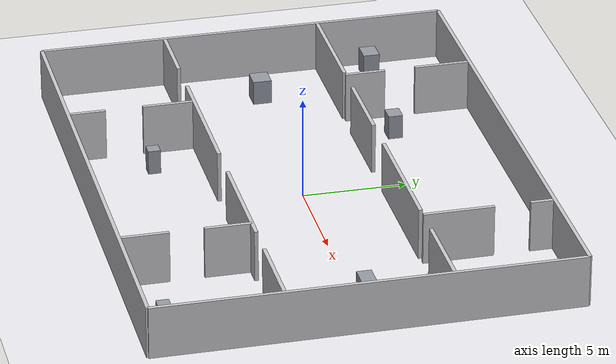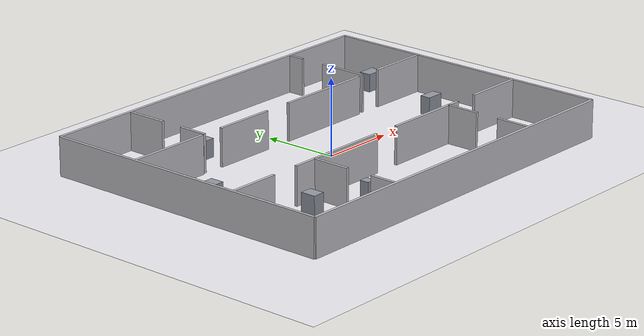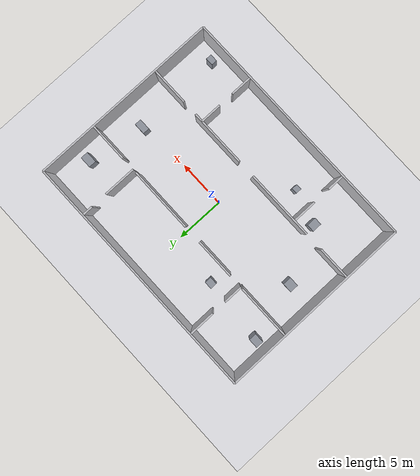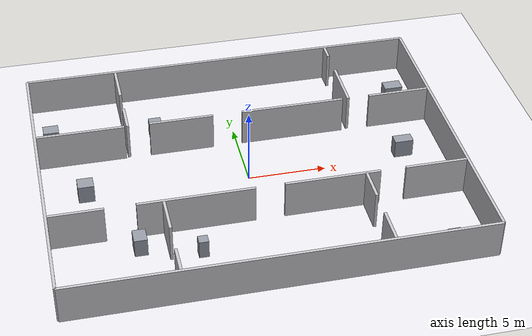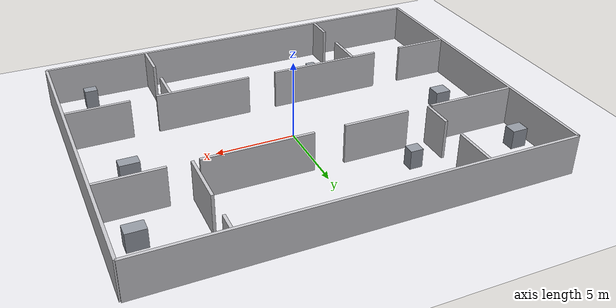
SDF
<?xml version="1.0"?>
<sdf version="1.9"><world name="new_room_world">
<plugin filename="gz-sim-physics-system" name="gz::sim::systems::Physics"/><plugin filename="gz-sim-user-commands-system" name="gz::sim::systems::UserCommands"/><plugin filename="gz-sim-scene-broadcaster-system" name="gz::sim::systems::SceneBroadcaster"/><plugin filename="gz-sim-sensors-system" name="gz::sim::systems::Sensors"><render_engine>ogre2</render_engine></plugin><plugin filename="gz-sim-imu-system" name="gz::sim::systems::Imu"/>
<physics name="new_room_realtime" type="ignored"><max_step_size>0.001</max_step_size><real_time_factor>1</real_time_factor></physics><gravity>0 0 -9.8</gravity><scene><ambient>0.85 0.85 0.87 1</ambient><background>0.68 0.68 0.71 1</background><shadows>false</shadows></scene><light name="sun" type="directional"><cast_shadows>false</cast_shadows><pose>0 0 10 0 0 0</pose><diffuse>0.95 0.95 0.95 1</diffuse><direction>-0.3 0.2 -1</direction></light>
<model name="new_room_ground"><static>true</static><link name="ground_link"><collision name="ground_collision"><geometry><plane><normal>0 0 1</normal><size>40 32</size></plane></geometry></collision><visual name="ground_visual"><geometry><plane><normal>0 0 1</normal><size>40 32</size></plane></geometry><material><ambient>0.92 0.92 0.94 1</ambient><diffuse>0.92 0.92 0.94 1</diffuse></material></visual></link></model>
<model name="mini_hospital_structure"><static>true</static><link name="structure">
<collision name="mx048_c000"><pose>0 10 1.25 0 0 0</pose><geometry><box><size>26 0.18 2.5</size></box></geometry></collision><visual name="mx048_v000"><pose>0 10 1.25 0 0 0</pose><geometry><box><size>26 0.18 2.5</size></box></geometry><material><ambient>0.78 0.78 0.80 1</ambient><diffuse>0.78 0.78 0.80 1</diffuse></material></visual>
<collision name="mx048_c001"><pose>0 -10 1.25 0 0 0</pose><geometry><box><size>26 0.18 2.5</size></box></geometry></collision><visual name="mx048_v001"><pose>0 -10 1.25 0 0 0</pose><geometry><box><size>26 0.18 2.5</size></box></geometry><material><ambient>0.78 0.78 0.80 1</ambient><diffuse>0.78 0.78 0.80 1</diffuse></material></visual>
<collision name="mx048_c002"><pose>-13 0 1.25 0 0 0</pose><geometry><box><size>0.18 20 2.5</size></box></geometry></collision><visual name="mx048_v002"><pose>-13 0 1.25 0 0 0</pose><geometry><box><size>0.18 20 2.5</size></box></geometry><material><ambient>0.78 0.78 0.80 1</ambient><diffuse>0.78 0.78 0.80 1</diffuse></material></visual>
<collision name="mx048_c003"><pose>13 0 1.25 0 0 0</pose><geometry><box><size>0.18 20 2.5</size></box></geometry></collision><visual name="mx048_v003"><pose>13 0 1.25 0 0 0</pose><geometry><box><size>0.18 20 2.5</size></box></geometry><material><ambient>0.78 0.78 0.80 1</ambient><diffuse>0.78 0.78 0.80 1</diffuse></material></visual>
<collision name="mx048_c004"><pose>-10.105 3.8 1.25 0 0 0</pose><geometry><box><size>5.61 0.18 2.5</size></box></geometry></collision><visual name="mx048_v004"><pose>-10.105 3.8 1.25 0 0 0</pose><geometry><box><size>5.61 0.18 2.5</size></box></geometry><material><ambient>0.78 0.78 0.80 1</ambient><diffuse>0.78 0.78 0.80 1</diffuse></material></visual>
<collision name="mx048_c005"><pose>-3.625 3.8 1.25 0 0 0</pose><geometry><box><size>4.15 0.18 2.5</size></box></geometry></collision><visual name="mx048_v005"><pose>-3.625 3.8 1.25 0 0 0</pose><geometry><box><size>4.15 0.18 2.5</size></box></geometry><material><ambient>0.78 0.78 0.80 1</ambient><diffuse>0.78 0.78 0.80 1</diffuse></material></visual>
<collision name="mx048_c006"><pose>3.725 3.8 1.25 0 0 0</pose><geometry><box><size>6.75 0.18 2.5</size></box></geometry></collision><visual name="mx048_v006"><pose>3.725 3.8 1.25 0 0 0</pose><geometry><box><size>6.75 0.18 2.5</size></box></geometry><material><ambient>0.78 0.78 0.80 1</ambient><diffuse>0.78 0.78 0.80 1</diffuse></material></visual>
<collision name="mx048_c007"><pose>10.905 3.8 1.25 0 0 0</pose><geometry><box><size>4.01 0.18 2.5</size></box></geometry></collision><visual name="mx048_v007"><pose>10.905 3.8 1.25 0 0 0</pose><geometry><box><size>4.01 0.18 2.5</size></box></geometry><material><ambient>0.78 0.78 0.80 1</ambient><diffuse>0.78 0.78 0.80 1</diffuse></material></visual>
<collision name="mx048_c008"><pose>-11.23 -3.9 1.25 0 0 0</pose><geometry><box><size>3.36 0.18 2.5</size></box></geometry></collision><visual name="mx048_v008"><pose>-11.23 -3.9 1.25 0 0 0</pose><geometry><box><size>3.36 0.18 2.5</size></box></geometry><material><ambient>0.78 0.78 0.80 1</ambient><diffuse>0.78 0.78 0.80 1</diffuse></material></visual>
<collision name="mx048_c009"><pose>-4.025 -3.9 1.25 0 0 0</pose><geometry><box><size>7.25 0.18 2.5</size></box></geometry></collision><visual name="mx048_v009"><pose>-4.025 -3.9 1.25 0 0 0</pose><geometry><box><size>7.25 0.18 2.5</size></box></geometry><material><ambient>0.78 0.78 0.80 1</ambient><diffuse>0.78 0.78 0.80 1</diffuse></material></visual>
<collision name="mx048_c010"><pose>4.4 -3.9 1.25 0 0 0</pose><geometry><box><size>6 0.18 2.5</size></box></geometry></collision><visual name="mx048_v010"><pose>4.4 -3.9 1.25 0 0 0</pose><geometry><box><size>6 0.18 2.5</size></box></geometry><material><ambient>0.78 0.78 0.80 1</ambient><diffuse>0.78 0.78 0.80 1</diffuse></material></visual>
<collision name="mx048_c011"><pose>10.955 -3.9 1.25 0 0 0</pose><geometry><box><size>3.91 0.18 2.5</size></box></geometry></collision><visual name="mx048_v011"><pose>10.955 -3.9 1.25 0 0 0</pose><geometry><box><size>3.91 0.18 2.5</size></box></geometry><material><ambient>0.78 0.78 0.80 1</ambient><diffuse>0.78 0.78 0.80 1</diffuse></material></visual>
<collision name="mx048_c012"><pose>-7.1 4.775 1.25 0 0 0</pose><geometry><box><size>0.18 1.95 2.5</size></box></geometry></collision><visual name="mx048_v012"><pose>-7.1 4.775 1.25 0 0 0</pose><geometry><box><size>0.18 1.95 2.5</size></box></geometry><material><ambient>0.78 0.78 0.80 1</ambient><diffuse>0.78 0.78 0.80 1</diffuse></material></visual>
<collision name="mx048_c013"><pose>-7.1 8.58 1.25 0 0 0</pose><geometry><box><size>0.18 2.66 2.5</size></box></geometry></collision><visual name="mx048_v013"><pose>-7.1 8.58 1.25 0 0 0</pose><geometry><box><size>0.18 2.66 2.5</size></box></geometry><material><ambient>0.78 0.78 0.80 1</ambient><diffuse>0.78 0.78 0.80 1</diffuse></material></visual>
<collision name="mx048_c014"><pose>7.5 5.475 1.25 0 0 0</pose><geometry><box><size>0.18 3.35 2.5</size></box></geometry></collision><visual name="mx048_v014"><pose>7.5 5.475 1.25 0 0 0</pose><geometry><box><size>0.18 3.35 2.5</size></box></geometry><material><ambient>0.78 0.78 0.80 1</ambient><diffuse>0.78 0.78 0.80 1</diffuse></material></visual>
<collision name="mx048_c015"><pose>7.5 9.38 1.25 0 0 0</pose><geometry><box><size>0.18 1.06 2.5</size></box></geometry></collision><visual name="mx048_v015"><pose>7.5 9.38 1.25 0 0 0</pose><geometry><box><size>0.18 1.06 2.5</size></box></geometry><material><ambient>0.78 0.78 0.80 1</ambient><diffuse>0.78 0.78 0.80 1</diffuse></material></visual>
<collision name="mx048_c016"><pose>-6 -9.055 1.25 0 0 0</pose><geometry><box><size>0.18 1.71 2.5</size></box></geometry></collision><visual name="mx048_v016"><pose>-6 -9.055 1.25 0 0 0</pose><geometry><box><size>0.18 1.71 2.5</size></box></geometry><material><ambient>0.78 0.78 0.80 1</ambient><diffuse>0.78 0.78 0.80 1</diffuse></material></visual>
<collision name="mx048_c017"><pose>-6 -5.15 1.25 0 0 0</pose><geometry><box><size>0.18 2.5 2.5</size></box></geometry></collision><visual name="mx048_v017"><pose>-6 -5.15 1.25 0 0 0</pose><geometry><box><size>0.18 2.5 2.5</size></box></geometry><material><ambient>0.78 0.78 0.80 1</ambient><diffuse>0.78 0.78 0.80 1</diffuse></material></visual>
<collision name="mx048_c018"><pose>6.5 -8.805 1.25 0 0 0</pose><geometry><box><size>0.18 2.21 2.5</size></box></geometry></collision><visual name="mx048_v018"><pose>6.5 -8.805 1.25 0 0 0</pose><geometry><box><size>0.18 2.21 2.5</size></box></geometry><material><ambient>0.78 0.78 0.80 1</ambient><diffuse>0.78 0.78 0.80 1</diffuse></material></visual>
<collision name="mx048_c019"><pose>6.5 -5 1.25 0 0 0</pose><geometry><box><size>0.18 2.2 2.5</size></box></geometry></collision><visual name="mx048_v019"><pose>6.5 -5 1.25 0 0 0</pose><geometry><box><size>0.18 2.2 2.5</size></box></geometry><material><ambient>0.78 0.78 0.80 1</ambient><diffuse>0.78 0.78 0.80 1</diffuse></material></visual>
<collision name="mx048_c020"><pose>-11.9 6.2 0.6 0 0 0</pose><geometry><box><size>1 0.8 1.2</size></box></geometry></collision><visual name="mx048_v020"><pose>-11.9 6.2 0.6 0 0 0</pose><geometry><box><size>1 0.8 1.2</size></box></geometry><material><ambient>0.58 0.60 0.64 1</ambient><diffuse>0.58 0.60 0.64 1</diffuse></material></visual>
<collision name="mx048_c021"><pose>-5.1 5.7 0.6 0 0 0</pose><geometry><box><size>0.8 0.7 1.2</size></box></geometry></collision><visual name="mx048_v021"><pose>-5.1 5.7 0.6 0 0 0</pose><geometry><box><size>0.8 0.7 1.2</size></box></geometry><material><ambient>0.58 0.60 0.64 1</ambient><diffuse>0.58 0.60 0.64 1</diffuse></material></visual>
<collision name="mx048_c022"><pose>11.4 6.4 0.6 0 0 0</pose><geometry><box><size>1.2 0.8 1.2</size></box></geometry></collision><visual name="mx048_v022"><pose>11.4 6.4 0.6 0 0 0</pose><geometry><box><size>1.2 0.8 1.2</size></box></geometry><material><ambient>0.58 0.60 0.64 1</ambient><diffuse>0.58 0.60 0.64 1</diffuse></material></visual>
<collision name="mx048_c023"><pose>-7.7 -5.2 0.6 0 0 0</pose><geometry><box><size>0.8 1 1.2</size></box></geometry></collision><visual name="mx048_v023"><pose>-7.7 -5.2 0.6 0 0 0</pose><geometry><box><size>0.8 1 1.2</size></box></geometry><material><ambient>0.58 0.60 0.64 1</ambient><diffuse>0.58 0.60 0.64 1</diffuse></material></visual>
<collision name="mx048_c024"><pose>-4.1 -6.3 0.6 0 0 0</pose><geometry><box><size>0.6 0.6 1.2</size></box></geometry></collision><visual name="mx048_v024"><pose>-4.1 -6.3 0.6 0 0 0</pose><geometry><box><size>0.6 0.6 1.2</size></box></geometry><material><ambient>0.58 0.60 0.64 1</ambient><diffuse>0.58 0.60 0.64 1</diffuse></material></visual>
<collision name="mx048_c025"><pose>10.6 -8.8 0.6 0 0 0</pose><geometry><box><size>0.8 0.6 1.2</size></box></geometry></collision><visual name="mx048_v025"><pose>10.6 -8.8 0.6 0 0 0</pose><geometry><box><size>0.8 0.6 1.2</size></box></geometry><material><ambient>0.58 0.60 0.64 1</ambient><diffuse>0.58 0.60 0.64 1</diffuse></material></visual>
<collision name="mx048_c026"><pose>-10.3 0.3 0.6 0 0 0</pose><geometry><box><size>1 0.9 1.2</size></box></geometry></collision><visual name="mx048_v026"><pose>-10.3 0.3 0.6 0 0 0</pose><geometry><box><size>1 0.9 1.2</size></box></geometry><material><ambient>0.58 0.60 0.64 1</ambient><diffuse>0.58 0.60 0.64 1</diffuse></material></visual>
<collision name="mx048_c027"><pose>10.3 0.5 0.6 0 0 0</pose><geometry><box><size>1.2 0.7 1.2</size></box></geometry></collision><visual name="mx048_v027"><pose>10.3 0.5 0.6 0 0 0</pose><geometry><box><size>1.2 0.7 1.2</size></box></geometry><material><ambient>0.58 0.60 0.64 1</ambient><diffuse>0.58 0.60 0.64 1</diffuse></material></visual>
</link></model></world></sdf>
